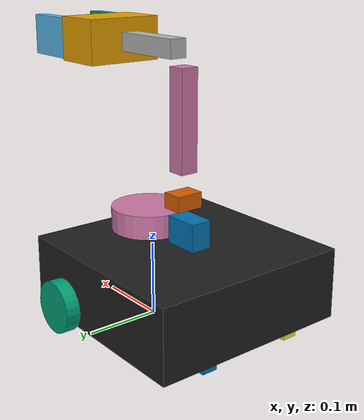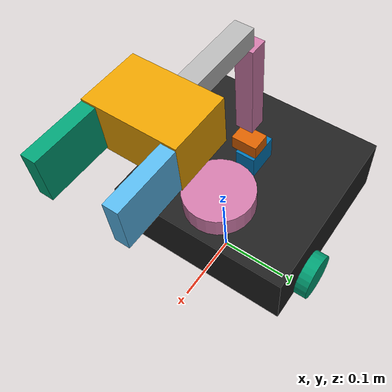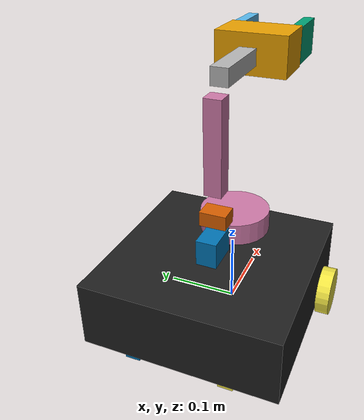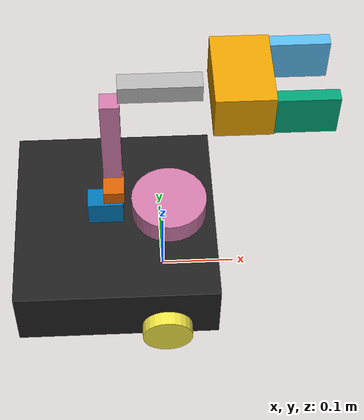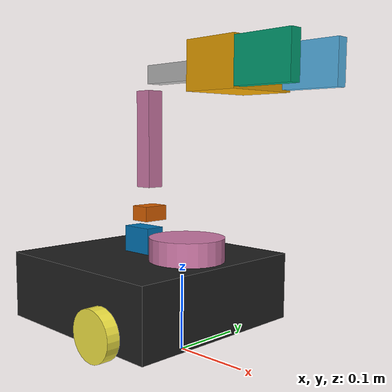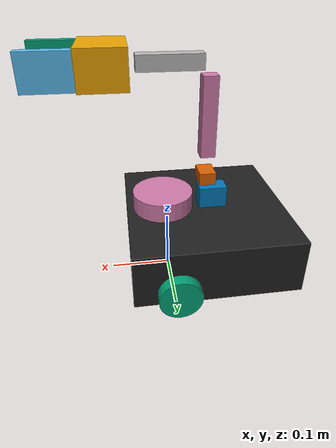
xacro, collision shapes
<?xml version="1.0" ?>
<robot name="tidybot" xmlns:xacro="http://ros.org/wiki/xacro">
  <xacro:include filename="$(find tidybot)/urdf/common_properties.xacro"/>

  <!-- Uncomment to disable the physics engine! -->

  <gazebo>
    <static>true</static>
  </gazebo>

  <!-- PROPERTIES -->
  <xacro:property name="base_offset_x" value="-0.064"/>
  <xacro:property name="base_offset_y" value="0.0"/>
  <xacro:property name="base_offset_z" value="0.0"/>

  <xacro:property name="base_length" value="0.266"/>
  <xacro:property name="base_width" value="0.266"/>
  <xacro:property name="base_height" value="0.0915"/>

  <xacro:property name="arm_base_length" value="0.0465"/>
  <xacro:property name="arm_base_width" value="0.0285"/>
  <xacro:property name="arm_base_height" value="0.036"/>

  <xacro:property name="link_offset_x" value="0.02275"/>

  <xacro:property name="first_link_length" value="0.028"/>
  <xacro:property name="first_link_width" value="0.038"/>
  <xacro:property name="first_link_height" value="0.0405"/>

  <xacro:property name="second_link_length" value="0.024"/>
  <xacro:property name="second_link_width" value="0.170"/>
  <xacro:property name="second_link_height" value="0.024"/>

  <xacro:property name="third_link_length" value="0.024"/>
  <xacro:property name="third_link_width" value="0.024"/>
  <xacro:property name="third_link_height" value="0.120"/>

  <xacro:property name="gripper_base_length" value="0.070"/>
  <xacro:property name="gripper_base_width" value="0.104"/>
  <xacro:property name="gripper_base_height" value="0.05825"/>

  <xacro:property name="finger_length" value="0.072"/>
  <xacro:property name="finger_width" value="0.016"/>
  <xacro:property name="finger_height" value="0.0536"/>
  <xacro:property name="finger_length_to_center" value="0.0395"/>

  <xacro:property name="finger_origin_offset" value="0.012"/>
  <xacro:property name="finger_offset_gripper_open" value="0.036"/>

  <xacro:property name="collision_box_reduction" value="0.02"/>

    <!-- ##################### BASE ################# -->
  <link name="base_footprint"/>

  <joint name="base_joint" type="fixed">
    <parent link="base_footprint"/>
    <child link="base_link" />
    <origin xyz="0 0 0.03" rpy="0 0 0"/>
  </joint>

  <link name="base_link">
    <visual>
      <origin xyz="-0.064 0 0" rpy="0 0 0"/>
      <geometry>
        <mesh filename="$(find tidybot)/meshes/waffle_pi_base_for_open_manipulator.stl" scale="0.001 0.001 0.001"/>
      </geometry>
      <material name="light_black"/>
    </visual>

    <collision>
      <origin xyz="-0.064 0 0.04575" rpy="0 0 0"/>
      <geometry>
        <box size="0.266 0.266 0.0915"/>
      </geometry>
    </collision>

    <inertial>
      <origin xyz="0.0 0 0.0" rpy="0 0 0"/>
      <mass value="1.6329594e+00"/>
      <inertia ixx="8.7002718e-03" ixy="-4.7576583e-05" ixz="1.1160499e-04"
               iyy="8.6195418e-03" iyz="-3.5422299e-06"
               izz="1.4612727e-02" />
    </inertial>
  </link>

    <!-- ##################### WHEELS ################# -->
  <joint name="wheel_left_joint" type="continuous">
    <parent link="base_link"/>
    <child link="wheel_left_link"/>
    <origin xyz="0.0 0.144 0.023" rpy="-1.57 0 0"/>
    <axis xyz="0 0 1"/>
    <limit effort="100" velocity="100"/>
    <dynamics damping="0.7" friction="0.01"/>
  </joint>

  <link name="wheel_left_link">
    <visual>
      <origin xyz="0 0 0" rpy="1.57 0 0"/>
      <geometry>
        <mesh filename="$(find tidybot)/meshes/left_tire.stl" scale="0.001 0.001 0.001"/>
      </geometry>
      <material name="dark"/>
    </visual>

    <collision>
      <origin xyz="0 0 0" rpy="0 0 0"/>
      <geometry>
        <cylinder length="0.018" radius="0.033"/>
      </geometry>
    </collision>

    <inertial>
      <origin xyz="0 0 0" />
      <mass value="2.8498940e-02" />
      <inertia ixx="1.1175580e-05" ixy="-4.2369783e-11" ixz="-5.9381719e-09"
               iyy="1.1192413e-05" iyz="-1.4400107e-11"
               izz="2.0712558e-05" />
      </inertial>
  </link>

  <joint name="wheel_right_joint" type="continuous">
    <parent link="base_link"/>
    <child link="wheel_right_link"/>
    <origin xyz="0.0 -0.144 0.023" rpy="-1.57 0 0"/>
    <axis xyz="0 0 1"/>
    <limit effort="100" velocity="100"/>
    <dynamics damping="0.7" friction="0.1"/>
  </joint>

  <link name="wheel_right_link">
    <visual>
      <origin xyz="0 0 0" rpy="1.57 0 0"/>
      <geometry>
        <mesh filename="$(find tidybot)/meshes/right_tire.stl" scale="0.001 0.001 0.001"/>
      </geometry>
      <material name="dark"/>
    </visual>

    <collision>
      <origin xyz="0 0.001 0" rpy="0 0 0"/>
      <geometry>
        <cylinder length="0.018" radius="0.033"/>
      </geometry>
    </collision>

    <inertial>
      <origin xyz="0 0 0" />
      <mass value="2.8498940e-02" />
      <inertia ixx="1.1175580e-05" ixy="-4.2369783e-11" ixz="-5.9381719e-09"
               iyy="1.1192413e-05" iyz="-1.4400107e-11"
               izz="2.0712558e-05" />
      </inertial>
  </link>

  <!-- ##################### ARM BASE ################# -->

  <joint name="arm_base_joint" type="fixed">
    <parent link="base_link"/>
    <child link="arm_base_link"/>
    <origin xyz="${base_offset_x} 0 ${base_height}" rpy="0 0 0"/>
    <axis xyz="0 0 1"/>
  </joint>

  <link name="arm_base_link">
    <visual>
      <origin xyz="0 0 ${arm_base_height}" rpy="0 0 0"/>
      <geometry>
        <mesh filename="$(find tidybot)/meshes/arm_base.stl" scale="0.001 0.001 0.001"/>
      </geometry>
      <material name="dark"/>
    </visual>

    <collision>
      <origin xyz="-0.0120 0 ${arm_base_height / 2}" rpy="0 0 0"/>
      <geometry>
        <box size="${arm_base_length} ${arm_base_width} ${arm_base_height}"/>
      </geometry>
    </collision>

    <inertial>
      <origin xyz="0 0 0" />
      <mass value="0.045438" />
      <inertia ixx="7196.83" ixy="2.068e-09" ixz="-129.011"
               iyy="12433.762" iyz="-2.775e-10"
               izz="11004.658" />
      </inertial>
  </link>

  <!-- ###################### FIRST LINK #####################-->
  <joint name="first_link_joint" type="continuous">
    <parent link="arm_base_link"/>
    <child link="first_link"/>
    <origin xyz="0 0 ${arm_base_height}" rpy="0 0 0"/>
    <axis xyz="0 0 1"/>
  </joint>

  <link name="first_link">
    <visual>
      <origin xyz="0 0 0" rpy="0 0 0"/>
      <geometry>
        <mesh filename="$(find tidybot)/meshes/first_link.stl" scale="0.001 0.001 0.001"/>
      </geometry>
      <material name="dark"/>
    </visual>

    <collision>
      <origin xyz="0 0 ${first_link_height / 2}" rpy="0 0 0"/>
      <geometry>
        <box size="${first_link_length - 0.001} ${first_link_width - 0.001} ${first_link_height / 2}"/>
      </geometry>
    </collision>

    <inertial>
      <origin xyz="0 0 0" />
      <mass value="0.060172" />
      <inertia ixx="21477.332" ixy="13.541" ixz="-430.792"
               iyy="21301.068" iyz="-111.614"
               izz="12348.458" />
      </inertial>
  </link>

  <!-- ##################### SECOND LINK ################# -->
  <joint name="second_link_joint" type="revolute">
    <parent link="first_link"/>
    <child link="second_link"/>
    <origin xyz="0 0 ${arm_base_height}" rpy="0 0 0"/>
    <axis xyz="0 1 0"/>
    <limit effort="100" velocity="100" lower="${-(pi)}" upper="${pi}"/>
    <dynamics damping="0.7" friction="0.01"/>

  </joint>

  <link name="second_link">
    <visual>
      <origin xyz="0 0 ${second_link_width}" rpy="${-(pi/2)} 0 ${pi/2}"/>
      <geometry>
        <mesh filename="$(find tidybot)/meshes/link_170.stl" scale="0.001 0.001 0.001"/>
      </geometry>
      <material name="dark"/>
    </visual>

    <collision>
      <origin xyz="0 0 ${second_link_width / 2}" rpy="${pi/2} 0 0"/>
      <geometry>
        <box size="${second_link_length} ${second_link_width - 0.04} ${second_link_height}"/>
      </geometry>
    </collision>

    <inertial>
      <origin xyz="0 0 0" />
      <mass value="0.112589" />
      <inertia ixx="3.509e+05" ixy="-61.351" ixz="-1202.759"
               iyy="3.432e+05" iyz="-36743.271"
               izz="38079.446" />
      </inertial>
  </link>

  <!-- ##################### THIRD LINK ################# -->
  <joint name="third_link_joint" type="revolute">
    <parent link="second_link"/>
    <child link="third_link"/>
    <origin xyz="0 0 ${second_link_width}" rpy="0 0 0"/>
    <axis xyz="0 1 0"/>
    <limit effort="100" velocity="100" lower="${-(2*pi/3)}" upper="${2*pi/3}"/>
    <dynamics damping="0.7" friction="0.01"/>

  </joint>

  <link name="third_link">
    <visual>
      <origin xyz="${third_link_height} 0 0" rpy="0 0 ${pi/2}"/>
      <geometry>
        <mesh filename="$(find tidybot)/meshes/link_120.stl" scale="0.001 0.001 0.001"/>
      </geometry>
      <material name="dark"/>
    </visual>

    <collision>
      <origin xyz="${third_link_height / 2} 0 0" rpy="0 ${pi/2} 0"/>
      <geometry>
        <box size="${third_link_length} ${third_link_width} ${third_link_height - collision_box_reduction}"/>
      </geometry>
    </collision>

    <inertial>
      <origin xyz="0 0 0" />
      <mass value="0.094954" />
      <inertia ixx="1.744e+05" ixy="647.52" ixz="-7.071"
               iyy="22596.123" iyz="-389.804"
               izz="1.803e+05" />
      </inertial>
  </link>

  <!-- ################## GRIPPER BASE ################### -->
  <joint name="gripper_base_joint" type="revolute">
    <parent link="third_link"/>
    <child link="gripper_base"/>
    <origin xyz="${third_link_height} 0 0" rpy="0 0 0"/>
    <axis xyz="0 1 0"/>
    <limit effort="100" velocity="100" lower="-${pi/2}" upper="${pi/2}"/>
    <dynamics damping="0.7" friction="0.01"/>

  </joint>

  <link name="gripper_base">
    <visual>
      <origin xyz="0 0 0" rpy="0 0 ${-pi/2}"/>
      <geometry>
        <mesh filename="$(find tidybot)/meshes/gripper_base.stl" scale="0.001 0.001 0.001"/>
      </geometry>
      <material name="dark"/>
    </visual>

    <collision>
      <origin xyz="${gripper_base_length / 2} 0 0" rpy="0 0 0"/>
      <geometry>
        <box size="${gripper_base_length} ${gripper_base_width} ${gripper_base_height}"/>
      </geometry>
    </collision>

    <inertial>
      <origin xyz="0 0 0" />
      <mass value="0.102503" />
      <inertia ixx="42037.078" ixy="0.002" ixz="-0.051"
               iyy="74712.63" iyz="1902.432"
               izz="61851.428" />
      </inertial>
  </link>

  <!-- ################# LEFT FINGER ################# -->
  <joint name="left_finger_joint" type="prismatic">
    <parent link="gripper_base"/>
    <child link="left_finger"/>
    <origin xyz="${gripper_base_length} ${finger_origin_offset + finger_offset_gripper_open} 0" rpy="0 0 0"/>
    <axis xyz="0 1 0"/>
    <limit effort="100" velocity="100" lower="0" upper="${finger_origin_offset + finger_offset_gripper_open}"/>
    <dynamics damping="0.7" friction="1.0"/>

  </joint>

  <link name="left_finger">
    <visual>
      <origin xyz="0 0 0" rpy="0 0 0"/>
      <geometry>
        <mesh filename="$(find tidybot)/meshes/gripper_finger.stl" scale="0.001 0.001 0.001"/>
      </geometry>
      <material name="dark"/>
    </visual>

    <collision>
      <origin xyz="${finger_length / 2} ${-((finger_origin_offset / 2) - 0.002)} 0" rpy="0 0 0"/>
      <geometry>
        <box size="${finger_length} ${finger_width} ${finger_height}"/>
      </geometry>
    </collision>

    <inertial>
      <origin xyz="0 0 0" />
      <mass value="0.02010" />
      <inertia ixx="4734.61" ixy="700.053" ixz="22.926"
               iyy="12948.951" iyz="6.405"
               izz="8977.298" />
      </inertial>
  </link>

  <!-- ################# RIGHT FINGER ################# -->
  <joint name="right_finger_joint" type="prismatic">
    <parent link="gripper_base"/>
    <child link="right_finger"/>
    <origin xyz="${gripper_base_length} ${-(finger_origin_offset + finger_offset_gripper_open)} 0" rpy="0 0 0"/>
    <axis xyz="0 1 0"/>
    <limit effort="100" velocity="100" lower="${-(finger_origin_offset + finger_offset_gripper_open)}" upper="0"/>
    <dynamics damping="0.7" friction="1.0"/>

  </joint>

  <link name="right_finger">
    <visual>
      <origin xyz="0 0 0" rpy="${pi} 0 0"/>
      <geometry>
        <mesh filename="$(find tidybot)/meshes/gripper_finger.stl" scale="0.001 0.001 0.001"/>
      </geometry>
      <material name="dark"/>
    </visual>

    <collision>
      <origin xyz="${finger_length / 2} ${(finger_origin_offset / 2) - 0.002} 0" rpy="0 0 0"/>
      <geometry>
        <box size="${finger_length} ${finger_width} ${finger_height}"/>
      </geometry>
    </collision>

    <inertial>
      <origin xyz="0 0 0" />
      <mass value="0.02010" />
      <inertia ixx="4734.61" ixy="700.053" ixz="22.926"
               iyy="12948.951" iyz="6.405"
               izz="8977.298" />
      </inertial>
  </link>

    <!-- ##################### CASTERS ################# -->
  <joint name="caster_back_right_joint" type="fixed">
    <parent link="base_link"/>
    <child link="caster_back_right_link"/>
    <origin xyz="-0.177 -0.064 -0.004" rpy="-1.57 0 0"/>
  </joint>

  <link name="caster_back_right_link">
    <collision>
      <origin xyz="0 0.001 0" rpy="0 0 0"/>
      <geometry>
        <box size="0.030 0.009 0.020"/>
      </geometry>
    </collision>

    <inertial>
      <origin xyz="0 0 0" />
      <mass value="0.005" />
      <inertia ixx="0.001" ixy="0.0" ixz="0.0"
               iyy="0.001" iyz="0.0"
               izz="0.001" />
    </inertial>
  </link>

  <joint name="caster_back_left_joint" type="fixed">
    <parent link="base_link"/>
    <child link="caster_back_left_link"/>
    <origin xyz="-0.177 0.064 -0.004" rpy="-1.57 0 0"/>
  </joint>

  <link name="caster_back_left_link">
    <collision>
      <origin xyz="0 0.001 0" rpy="0 0 0"/>
      <geometry>
        <box size="0.030 0.009 0.020"/>
      </geometry>
    </collision>

    <inertial>
      <origin xyz="0 0 0" />
      <mass value="0.005" />
      <inertia ixx="0.001" ixy="0.0" ixz="0.0"
               iyy="0.001" iyz="0.0"
               izz="0.001" />
    </inertial>
  </link>

    <!-- ##################### SENSORS ################# -->
  <joint name="imu_joint" type="fixed">
    <parent link="base_link"/>
    <child link="imu_link"/>
    <origin xyz="0.0 0 0.068" rpy="0 0 0"/>
  </joint>

  <link name="imu_link"/>

  <joint name="scan_joint" type="fixed">
    <parent link="base_link"/>
    <child link="base_scan"/>
    <origin xyz="-0.024 0 0.122" rpy="0 0 0"/>
  </joint>

  <link name="base_scan">
    <visual>
      <origin xyz="0.02 0 -0.01" rpy="0 0 0"/>
      <geometry>
        <mesh filename="$(find tidybot)/meshes/lds.stl" scale="0.001 0.001 0.001"/>
      </geometry>
      <material name="dark"/>
    </visual>

    <collision>
      <origin xyz="0.032 0 -0.015" rpy="0 0 0"/>
      <geometry>
        <cylinder length="0.031" radius="0.05"/>
      </geometry>
    </collision>

    <inertial>
      <mass value="0.114" />
      <origin xyz="0 0 0" />
      <inertia ixx="0.001" ixy="0.0" ixz="0.0"
               iyy="0.001" iyz="0.0"
               izz="0.001" />
    </inertial>
  </link>

</robot>
